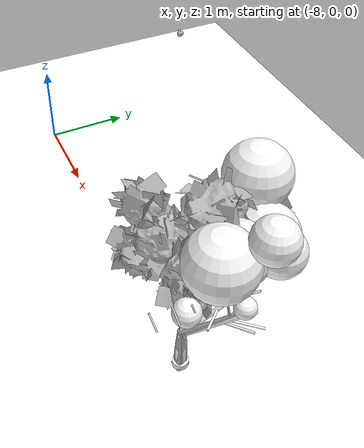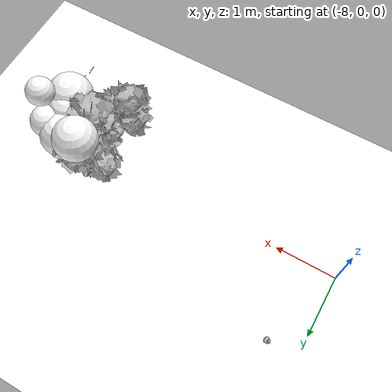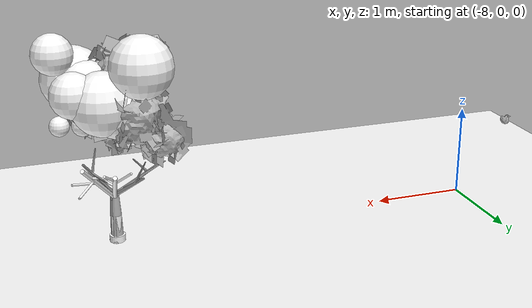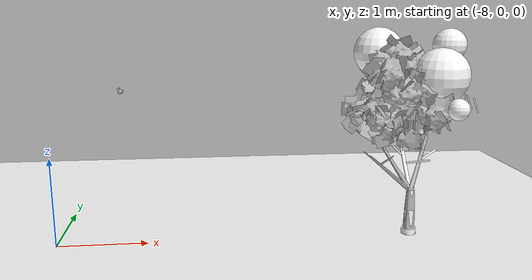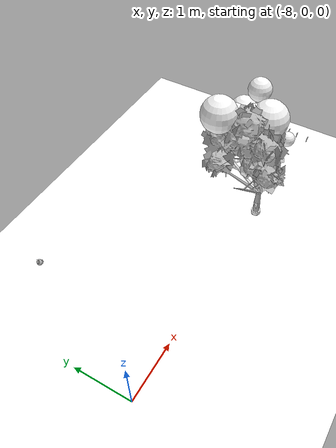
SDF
<sdf version="1.11">
 <world name="peach_orchard">
  <model name="ground">
   <static>true</static>
   <link name="link">
    <visual name="soil">
     <geometry><plane><normal>0 0 1</normal><size>32 22</size></plane></geometry>
     <material>
      <ambient>1 1 1 1</ambient>
      <diffuse>1 1 1 1</diffuse>
      <specular>0.1 0.1 0.1 1</specular>
      <pbr>
       <metal>
        <albedo_map>textures/soil_albedo.png</albedo_map>
        <normal_map type="tangent">textures/soil_normal.png</normal_map>
        <roughness>0.95</roughness>
        <metalness>0</metalness>
       </metal>
      </pbr>
     </material>
    </visual>
    <collision name="c_soil">
     <geometry><plane><normal>0 0 1</normal><size>32 22</size></plane></geometry>
    </collision>
   </link>
  </model>
  <model name="tree_r1_t3">
   <pose>-4 0 0 0 0 0</pose>
   <static>true</static>
   <link name="link">
    <visual name="tree_mesh">
     <pose>0 0 0 0 0 0.241848</pose>
     <geometry>
      <mesh><uri>model://peach_sim/meshes/peach_tree_b.glb</uri><scale>0.968086 0.968086 0.968086</scale></mesh>
     </geometry>
    </visual>
    <visual name="trunk_0">
     <pose>0 0 0.145946 0 0 0</pose>
     <geometry><cylinder><radius>0.0563853</radius><length>0.291893</length></cylinder></geometry>
     <material>
      <ambient>1 1 1 1</ambient>
      <diffuse>1 1 1 1</diffuse>
      <specular>0.1 0.1 0.1 1</specular>
      <pbr>
       <metal>
        <albedo_map>textures/bark_albedo.png</albedo_map>
        <normal_map type="tangent">textures/bark_normal.png</normal_map>
        <roughness>0.9</roughness>
        <metalness>0</metalness>
       </metal>
      </pbr>
     </material>
    </visual>
    <collision name="c_trunk_0">
     <pose>0 0 0.145946 0 0 0</pose>
     <geometry><cylinder><radius>0.0563853</radius><length>0.291893</length></cylinder></geometry>
    </collision>
    <visual name="trunk_1">
     <pose>0 0 0.411304 0 0 0</pose>
     <geometry><cylinder><radius>0.0405974</radius><length>0.238821</length></cylinder></geometry>
     <material>
      <ambient>1 1 1 1</ambient>
      <diffuse>1 1 1 1</diffuse>
      <specular>0.1 0.1 0.1 1</specular>
      <pbr>
       <metal>
        <albedo_map>textures/bark_albedo.png</albedo_map>
        <normal_map type="tangent">textures/bark_normal.png</normal_map>
        <roughness>0.9</roughness>
        <metalness>0</metalness>
       </metal>
      </pbr>
     </material>
    </visual>
    <collision name="c_trunk_1">
     <pose>0 0 0.411304 0 0 0</pose>
     <geometry><cylinder><radius>0.0405974</radius><length>0.238821</length></cylinder></geometry>
    </collision>
    <visual name="root_flare">
     <pose>0 0 0.035 0 0 0</pose>
     <geometry><cylinder><radius>0.0817587</radius><length>0.07</length></cylinder></geometry>
     <material>
      <ambient>1 1 1 1</ambient>
      <diffuse>1 1 1 1</diffuse>
      <specular>0.1 0.1 0.1 1</specular>
      <pbr>
       <metal>
        <albedo_map>textures/bark_albedo.png</albedo_map>
        <normal_map type="tangent">textures/bark_normal.png</normal_map>
        <roughness>0.95</roughness>
        <metalness>0</metalness>
       </metal>
      </pbr>
     </material>
    </visual>
    <visual name="scaffold_0">
     <pose>0.0329794 0.284302 0.709772 0 0.912133 1.45531</pose>
     <geometry><cylinder><radius>0.022</radius><length>0.723835</length></cylinder></geometry>
     <material>
      <ambient>1 1 1 1</ambient>
      <diffuse>1 1 1 1</diffuse>
      <specular>0.1 0.1 0.1 1</specular>
      <pbr>
       <metal>
        <albedo_map>textures/bark_albedo.png</albedo_map>
        <normal_map type="tangent">textures/bark_normal.png</normal_map>
        <roughness>0.9</roughness>
        <metalness>0</metalness>
       </metal>
      </pbr>
     </material>
    </visual>
    <collision name="c_scaffold_0">
     <pose>0.0329794 0.284302 0.709772 0 0.912133 1.45531</pose>
     <geometry><cylinder><radius>0.022</radius><length>0.723835</length></cylinder></geometry>
    </collision>
    <visual name="branchlet_0_0">
     <pose>0.118127 0.580056 0.933213 0 1.02898 1.01329</pose>
     <geometry><cylinder><radius>0.012</radius><length>0.275584</length></cylinder></geometry>
     <material>
      <ambient>1 1 1 1</ambient>
      <diffuse>1 1 1 1</diffuse>
      <specular>0.1 0.1 0.1 1</specular>
      <pbr>
       <metal>
        <albedo_map>textures/bark_albedo.png</albedo_map>
        <normal_map type="tangent">textures/bark_normal.png</normal_map>
        <roughness>0.9</roughness>
        <metalness>0</metalness>
       </metal>
      </pbr>
     </material>
    </visual>
    <visual name="branchlet_0_1">
     <pose>-0.0206288 0.499957 0.887823 0 0.964158 2.25963</pose>
     <geometry><cylinder><radius>0.012</radius><length>0.263931</length></cylinder></geometry>
     <material>
      <ambient>1 1 1 1</ambient>
      <diffuse>1 1 1 1</diffuse>
      <specular>0.1 0.1 0.1 1</specular>
      <pbr>
       <metal>
        <albedo_map>textures/bark_albedo.png</albedo_map>
        <normal_map type="tangent">textures/bark_normal.png</normal_map>
        <roughness>0.9</roughness>
        <metalness>0</metalness>
       </metal>
      </pbr>
     </material>
    </visual>
    <visual name="branchlet_0_2">
     <pose>0.146878 0.225408 0.795486 0 1.30136 -0.812169</pose>
     <geometry><cylinder><radius>0.012</radius><length>0.32443</length></cylinder></geometry>
     <material>
      <ambient>1 1 1 1</ambient>
      <diffuse>1 1 1 1</diffuse>
      <specular>0.1 0.1 0.1 1</specular>
      <pbr>
       <metal>
        <albedo_map>textures/bark_albedo.png</albedo_map>
        <normal_map type="tangent">textures/bark_normal.png</normal_map>
        <roughness>0.9</roughness>
        <metalness>0</metalness>
       </metal>
      </pbr>
     </material>
    </visual>
    <visual name="scaffold_1">
     <pose>0.181513 0.259035 0.754823 0 0.870519 0.959583</pose>
     <geometry><cylinder><radius>0.022</radius><length>0.827293</length></cylinder></geometry>
     <material>
      <ambient>1 1 1 1</ambient>
      <diffuse>1 1 1 1</diffuse>
      <specular>0.1 0.1 0.1 1</specular>
      <pbr>
       <metal>
        <albedo_map>textures/bark_albedo.png</albedo_map>
        <normal_map type="tangent">textures/bark_normal.png</normal_map>
        <roughness>0.9</roughness>
        <metalness>0</metalness>
       </metal>
      </pbr>
     </material>
    </visual>
    <collision name="c_scaffold_1">
     <pose>0.181513 0.259035 0.754823 0 0.870519 0.959583</pose>
     <geometry><cylinder><radius>0.022</radius><length>0.827293</length></cylinder></geometry>
    </collision>
    <visual name="branchlet_1_0">
     <pose>0.326645 0.471388 0.809922 0 1.72518 0.978137</pose>
     <geometry><cylinder><radius>0.012</radius><length>0.327774</length></cylinder></geometry>
     <material>
      <ambient>1 1 1 1</ambient>
      <diffuse>1 1 1 1</diffuse>
      <specular>0.1 0.1 0.1 1</specular>
      <pbr>
       <metal>
        <albedo_map>textures/bark_albedo.png</albedo_map>
        <normal_map type="tangent">textures/bark_normal.png</normal_map>
        <roughness>0.9</roughness>
        <metalness>0</metalness>
       </metal>
      </pbr>
     </material>
    </visual>
    <visual name="branchlet_1_1">
     <pose>0.334704 0.375547 0.830381 0 1.31322 0.567138</pose>
     <geometry><cylinder><radius>0.012</radius><length>0.316873</length></cylinder></geometry>
     <material>
      <ambient>1 1 1 1</ambient>
      <diffuse>1 1 1 1</diffuse>
      <specular>0.1 0.1 0.1 1</specular>
      <pbr>
       <metal>
        <albedo_map>textures/bark_albedo.png</albedo_map>
        <normal_map type="tangent">textures/bark_normal.png</normal_map>
        <roughness>0.9</roughness>
        <metalness>0</metalness>
       </metal>
      </pbr>
     </material>
    </visual>
    <visual name="branchlet_1_2">
     <pose>0.16469 0.467942 0.900355 0 1.49248 2.52145</pose>
     <geometry><cylinder><radius>0.012</radius><length>0.268154</length></cylinder></geometry>
     <material>
      <ambient>1 1 1 1</ambient>
      <diffuse>1 1 1 1</diffuse>
      <specular>0.1 0.1 0.1 1</specular>
      <pbr>
       <metal>
        <albedo_map>textures/bark_albedo.png</albedo_map>
        <normal_map type="tangent">textures/bark_normal.png</normal_map>
        <roughness>0.9</roughness>
        <metalness>0</metalness>
       </metal>
      </pbr>
     </material>
    </visual>
    <visual name="canopy_0">
     <pose>0.064805 0.394088 1.7033 0 0 0</pose>
     <geometry><sphere><radius>0.262453</radius></sphere></geometry>
     <material>
      <ambient>1 1 1 1</ambient>
      <diffuse>1 1 1 1</diffuse>
      <specular>0.1 0.1 0.1 1</specular>
      <pbr>
       <metal>
        <albedo_map>textures/leaf_albedo.png</albedo_map>
        <normal_map type="tangent">textures/leaf_normal.png</normal_map>
        <roughness>0.85</roughness>
        <metalness>0</metalness>
       </metal>
      </pbr>
     </material>
    </visual>
    <collision name="c_canopy_0">
     <pose>0.064805 0.394088 1.7033 0 0 0</pose>
     <geometry><sphere><radius>0.262453</radius></sphere></geometry>
    </collision>
    <visual name="canopy_1">
     <pose>0.536835 0.416014 2.14856 0 0 0</pose>
     <geometry><sphere><radius>0.195367</radius></sphere></geometry>
     <material>
      <ambient>1 1 1 1</ambient>
      <diffuse>1 1 1 1</diffuse>
      <specular>0.1 0.1 0.1 1</specular>
      <pbr>
       <metal>
        <albedo_map>textures/leaf_albedo.png</albedo_map>
        <normal_map type="tangent">textures/leaf_normal.png</normal_map>
        <roughness>0.85</roughness>
        <metalness>0</metalness>
       </metal>
      </pbr>
     </material>
    </visual>
    <collision name="c_canopy_1">
     <pose>0.536835 0.416014 2.14856 0 0 0</pose>
     <geometry><sphere><radius>0.195367</radius></sphere></geometry>
    </collision>
    <visual name="canopy_2">
     <pose>-0.00118592 0.62112 1.63104 0 0 0</pose>
     <geometry><sphere><radius>0.28126</radius></sphere></geometry>
     <material>
      <ambient>1 1 1 1</ambient>
      <diffuse>1 1 1 1</diffuse>
      <specular>0.1 0.1 0.1 1</specular>
      <pbr>
       <metal>
        <albedo_map>textures/leaf_albedo.png</albedo_map>
        <normal_map type="tangent">textures/leaf_normal.png</normal_map>
        <roughness>0.85</roughness>
        <metalness>0</metalness>
       </metal>
      </pbr>
     </material>
    </visual>
    <collision name="c_canopy_2">
     <pose>-0.00118592 0.62112 1.63104 0 0 0</pose>
     <geometry><sphere><radius>0.28126</radius></sphere></geometry>
    </collision>
    <visual name="canopy_3">
     <pose>0.143746 0.633204 1.70177 0 0 0</pose>
     <geometry><sphere><radius>0.306259</radius></sphere></geometry>
     <material>
      <ambient>1 1 1 1</ambient>
      <diffuse>1 1 1 1</diffuse>
      <specular>0.1 0.1 0.1 1</specular>
      <pbr>
       <metal>
        <albedo_map>textures/leaf_albedo.png</albedo_map>
        <normal_map type="tangent">textures/leaf_normal.png</normal_map>
        <roughness>0.85</roughness>
        <metalness>0</metalness>
       </metal>
      </pbr>
     </material>
    </visual>
    <visual name="canopy_4">
     <pose>-0.181231 0.64685 1.96443 0 0 0</pose>
     <geometry><sphere><radius>0.2058</radius></sphere></geometry>
     <material>
      <ambient>1 1 1 1</ambient>
      <diffuse>1 1 1 1</diffuse>
      <specular>0.1 0.1 0.1 1</specular>
      <pbr>
       <metal>
        <albedo_map>textures/leaf_albedo.png</albedo_map>
        <normal_map type="tangent">textures/leaf_normal.png</normal_map>
        <roughness>0.85</roughness>
        <metalness>0</metalness>
       </metal>
      </pbr>
     </material>
    </visual>
    <visual name="canopy_5">
     <pose>0.39819 0.603902 1.79832 0 0 0</pose>
     <geometry><sphere><radius>0.219762</radius></sphere></geometry>
     <material>
      <ambient>1 1 1 1</ambient>
      <diffuse>1 1 1 1</diffuse>
      <specular>0.1 0.1 0.1 1</specular>
      <pbr>
       <metal>
        <albedo_map>textures/leaf_albedo.png</albedo_map>
        <normal_map type="tangent">textures/leaf_normal.png</normal_map>
        <roughness>0.85</roughness>
        <metalness>0</metalness>
       </metal>
      </pbr>
     </material>
    </visual>
    <visual name="canopy_6">
     <pose>-0.214008 0.743225 2.04777 0 0 0</pose>
     <geometry><sphere><radius>0.302364</radius></sphere></geometry>
     <material>
      <ambient>1 1 1 1</ambient>
      <diffuse>1 1 1 1</diffuse>
      <specular>0.1 0.1 0.1 1</specular>
      <pbr>
       <metal>
        <albedo_map>textures/leaf_albedo.png</albedo_map>
        <normal_map type="tangent">textures/leaf_normal.png</normal_map>
        <roughness>0.85</roughness>
        <metalness>0</metalness>
       </metal>
      </pbr>
     </material>
    </visual>
    <visual name="canopy_7">
     <pose>0.252425 0.311223 1.76024 0 0 0</pose>
     <geometry><sphere><radius>0.285173</radius></sphere></geometry>
     <material>
      <ambient>1 1 1 1</ambient>
      <diffuse>1 1 1 1</diffuse>
      <specular>0.1 0.1 0.1 1</specular>
      <pbr>
       <metal>
        <albedo_map>textures/leaf_albedo.png</albedo_map>
        <normal_map type="tangent">textures/leaf_normal.png</normal_map>
        <roughness>0.85</roughness>
        <metalness>0</metalness>
       </metal>
      </pbr>
     </material>
    </visual>
    <visual name="canopy_8">
     <pose>0.333621 0.11952 1.82283 0 0 0</pose>
     <geometry><sphere><radius>0.31984</radius></sphere></geometry>
     <material>
      <ambient>1 1 1 1</ambient>
      <diffuse>1 1 1 1</diffuse>
      <specular>0.1 0.1 0.1 1</specular>
      <pbr>
       <metal>
        <albedo_map>textures/leaf_albedo.png</albedo_map>
        <normal_map type="tangent">textures/leaf_normal.png</normal_map>
        <roughness>0.85</roughness>
        <metalness>0</metalness>
       </metal>
      </pbr>
     </material>
    </visual>
    <visual name="foliage_0">
     <pose>0.417111 -0.199624 1.49172 0 0 0</pose>
     <geometry><sphere><radius>0.12201</radius></sphere></geometry>
     <material>
      <ambient>1 1 1 1</ambient>
      <diffuse>1 1 1 1</diffuse>
      <specular>0.1 0.1 0.1 1</specular>
      <pbr>
       <metal>
        <albedo_map>textures/leaf_albedo.png</albedo_map>
        <normal_map type="tangent">textures/leaf_normal.png</normal_map>
        <roughness>0.85</roughness>
        <metalness>0</metalness>
       </metal>
      </pbr>
     </material>
    </visual>
    <visual name="foliage_4">
     <pose>0.301586 0.335927 1.41804 0 0 0</pose>
     <geometry><sphere><radius>0.108404</radius></sphere></geometry>
     <material>
      <ambient>1 1 1 1</ambient>
      <diffuse>1 1 1 1</diffuse>
      <specular>0.1 0.1 0.1 1</specular>
      <pbr>
       <metal>
        <albedo_map>textures/leaf_albedo.png</albedo_map>
        <normal_map type="tangent">textures/leaf_normal.png</normal_map>
        <roughness>0.85</roughness>
        <metalness>0</metalness>
       </metal>
      </pbr>
     </material>
    </visual>
    <visual name="foliage_8">
     <pose>0.514489 0.270833 1.40672 0 0 0</pose>
     <geometry><sphere><radius>0.0981645</radius></sphere></geometry>
     <material>
      <ambient>1 1 1 1</ambient>
      <diffuse>1 1 1 1</diffuse>
      <specular>0.1 0.1 0.1 1</specular>
      <pbr>
       <metal>
        <albedo_map>textures/leaf_albedo.png</albedo_map>
        <normal_map type="tangent">textures/leaf_normal.png</normal_map>
        <roughness>0.85</roughness>
        <metalness>0</metalness>
       </metal>
      </pbr>
     </material>
    </visual>
    <visual name="twig_0">
     <pose>0.493512 -0.171561 1.56841 0 0.323093 -2.21088</pose>
     <geometry><cylinder><radius>0.007</radius><length>0.195568</length></cylinder></geometry>
     <material>
      <ambient>1 1 1 1</ambient>
      <diffuse>1 1 1 1</diffuse>
      <specular>0.1 0.1 0.1 1</specular>
      <pbr>
       <metal>
        <albedo_map>textures/bark_albedo.png</albedo_map>
        <normal_map type="tangent">textures/bark_normal.png</normal_map>
        <roughness>0.9</roughness>
        <metalness>0</metalness>
       </metal>
      </pbr>
     </material>
    </visual>
    <visual name="twig_1">
     <pose>0.470332 -0.322523 1.58863 0 0.473804 -2.74767</pose>
     <geometry><cylinder><radius>0.007</radius><length>0.182788</length></cylinder></geometry>
     <material>
      <ambient>1 1 1 1</ambient>
      <diffuse>1 1 1 1</diffuse>
      <specular>0.1 0.1 0.1 1</specular>
      <pbr>
       <metal>
        <albedo_map>textures/bark_albedo.png</albedo_map>
        <normal_map type="tangent">textures/bark_normal.png</normal_map>
        <roughness>0.9</roughness>
        <metalness>0</metalness>
       </metal>
      </pbr>
     </material>
    </visual>
    <visual name="twig_2">
     <pose>0.453296 -0.502014 1.58796 0 0.483501 -2.73242</pose>
     <geometry><cylinder><radius>0.007</radius><length>0.179243</length></cylinder></geometry>
     <material>
      <ambient>1 1 1 1</ambient>
      <diffuse>1 1 1 1</diffuse>
      <specular>0.1 0.1 0.1 1</specular>
      <pbr>
       <metal>
        <albedo_map>textures/bark_albedo.png</albedo_map>
        <normal_map type="tangent">textures/bark_normal.png</normal_map>
        <roughness>0.9</roughness>
        <metalness>0</metalness>
       </metal>
      </pbr>
     </material>
    </visual>
    <visual name="twig_3">
     <pose>0.290309 0.101487 1.50677 0 0.363349 2.80969</pose>
     <geometry><cylinder><radius>0.007</radius><length>0.108767</length></cylinder></geometry>
     <material>
      <ambient>1 1 1 1</ambient>
      <diffuse>1 1 1 1</diffuse>
      <specular>0.1 0.1 0.1 1</specular>
      <pbr>
       <metal>
        <albedo_map>textures/bark_albedo.png</albedo_map>
        <normal_map type="tangent">textures/bark_normal.png</normal_map>
        <roughness>0.9</roughness>
        <metalness>0</metalness>
       </metal>
      </pbr>
     </material>
    </visual>
    <visual name="twig_4">
     <pose>0.307786 0.310989 1.5504 0 0.727273 2.77805</pose>
     <geometry><cylinder><radius>0.007</radius><length>0.103851</length></cylinder></geometry>
     <material>
      <ambient>1 1 1 1</ambient>
      <diffuse>1 1 1 1</diffuse>
      <specular>0.1 0.1 0.1 1</specular>
      <pbr>
       <metal>
        <albedo_map>textures/bark_albedo.png</albedo_map>
        <normal_map type="tangent">textures/bark_normal.png</normal_map>
        <roughness>0.9</roughness>
        <metalness>0</metalness>
       </metal>
      </pbr>
     </material>
    </visual>
    <visual name="twig_5">
     <pose>0.339444 0.544658 1.61342 0 0.392445 2.84728</pose>
     <geometry><cylinder><radius>0.007</radius><length>0.219606</length></cylinder></geometry>
     <material>
      <ambient>1 1 1 1</ambient>
      <diffuse>1 1 1 1</diffuse>
      <specular>0.1 0.1 0.1 1</specular>
      <pbr>
       <metal>
        <albedo_map>textures/bark_albedo.png</albedo_map>
        <normal_map type="tangent">textures/bark_normal.png</normal_map>
        <roughness>0.9</roughness>
        <metalness>0</metalness>
       </metal>
      </pbr>
     </material>
    </visual>
    <visual name="twig_6">
     <pose>0.38345 -0.00289012 1.5703 0 0.359835 -2.727</pose>
     <geometry><cylinder><radius>0.007</radius><length>0.213034</length></cylinder></geometry>
     <material>
      <ambient>1 1 1 1</ambient>
      <diffuse>1 1 1 1</diffuse>
      <specular>0.1 0.1 0.1 1</specular>
      <pbr>
       <metal>
        <albedo_map>textures/bark_albedo.png</albedo_map>
        <normal_map type="tangent">textures/bark_normal.png</normal_map>
        <roughness>0.9</roughness>
        <metalness>0</metalness>
       </metal>
      </pbr>
     </material>
    </visual>
    <visual name="twig_7">
     <pose>0.412016 0.0861907 1.5304 0 0.461709 -2.33478</pose>
     <geometry><cylinder><radius>0.007</radius><length>0.192888</length></cylinder></geometry>
     <material>
      <ambient>1 1 1 1</ambient>
      <diffuse>1 1 1 1</diffuse>
      <specular>0.1 0.1 0.1 1</specular>
      <pbr>
       <metal>
        <albedo_map>textures/bark_albedo.png</albedo_map>
        <normal_map type="tangent">textures/bark_normal.png</normal_map>
        <roughness>0.9</roughness>
        <metalness>0</metalness>
       </metal>
      </pbr>
     </material>
    </visual>
    <visual name="twig_8">
     <pose>0.509468 0.229766 1.47456 0 0.55587 -3.12906</pose>
     <geometry><cylinder><radius>0.007</radius><length>0.119455</length></cylinder></geometry>
     <material>
      <ambient>1 1 1 1</ambient>
      <diffuse>1 1 1 1</diffuse>
      <specular>0.1 0.1 0.1 1</specular>
      <pbr>
       <metal>
        <albedo_map>textures/bark_albedo.png</albedo_map>
        <normal_map type="tangent">textures/bark_normal.png</normal_map>
        <roughness>0.9</roughness>
        <metalness>0</metalness>
       </metal>
      </pbr>
     </material>
    </visual>
   </link>
  </model>
  <model name="peach_tree_r0_t4_01">
   <pose>-7.45 1.66604 1.45 0 0.676479 3.10772</pose>
   <static>true</static>
   <link name="bag">
    <visual name="bag_mesh">
     <pose>0 0 0.0386345 0 0 0</pose>
     <geometry>
      <mesh><uri>model://peach_sim/meshes/bagged_peach.glb</uri><scale>0.99516 1.18866 0.878056</scale></mesh>
     </geometry>
    </visual>
    <visual name="body">
     <pose>0 0 0.0206345 0 0 0</pose>
     <geometry><ellipsoid><radii>0.0373185 0.0309051 0.0222852</radii></ellipsoid></geometry>
     <material>
      <ambient>1 1 1 1</ambient>
      <diffuse>1 1 1 1</diffuse>
      <specular>0.1 0.1 0.1 1</specular>
      <pbr>
       <metal>
        <albedo_map>textures/paper_bag_albedo.png</albedo_map>
        <normal_map type="tangent">textures/paper_bag_normal.png</normal_map>
        <roughness>0.72</roughness>
        <metalness>0</metalness>
       </metal>
      </pbr>
     </material>
    </visual>
    <visual name="bottom_fold">
     <pose>0 0 0.012 0 0 0.35</pose>
     <geometry><box><size>0.0578437 0.0355408 0.022</size></box></geometry>
     <material>
      <ambient>1 1 1 1</ambient>
      <diffuse>1 1 1 1</diffuse>
      <specular>0.1 0.1 0.1 1</specular>
      <pbr>
       <metal>
        <albedo_map>textures/paper_bag_albedo.png</albedo_map>
        <normal_map type="tangent">textures/paper_bag_normal.png</normal_map>
        <roughness>0.8</roughness>
        <metalness>0</metalness>
       </metal>
      </pbr>
     </material>
    </visual>
    <visual name="fruit">
     <pose>0 0 0.0188406 0 0 0</pose>
     <geometry><sphere><radius>0.0258343</radius></sphere></geometry>
     <material>
      <ambient>1 1 1 1</ambient>
      <diffuse>1 1 1 1</diffuse>
      <specular>0.1 0.1 0.1 1</specular>
      <pbr>
       <metal>
        <albedo_map>textures/fruit_skin_albedo.png</albedo_map>
        <normal_map type="tangent">textures/fruit_skin_normal.png</normal_map>
        <roughness>0.55</roughness>
        <metalness>0</metalness>
       </metal>
      </pbr>
     </material>
    </visual>
    <visual name="neck">
     <pose>0 0 0.0502689 0 0 0</pose>
     <geometry><cylinder><radius>0.013</radius><length>0.018</length></cylinder></geometry>
     <material>
      <ambient>1 1 1 1</ambient>
      <diffuse>1 1 1 1</diffuse>
      <specular>0.1 0.1 0.1 1</specular>
      <pbr>
       <metal>
        <albedo_map>textures/paper_bag_albedo.png</albedo_map>
        <normal_map type="tangent">textures/paper_bag_normal.png</normal_map>
        <roughness>0.75</roughness>
        <metalness>0</metalness>
       </metal>
      </pbr>
     </material>
    </visual>
    <visual name="gather">
     <pose>0 0 0.0312689 0 0 0</pose>
     <geometry><cylinder><radius>0.019</radius><length>0.02</length></cylinder></geometry>
     <material>
      <ambient>1 1 1 1</ambient>
      <diffuse>1 1 1 1</diffuse>
      <specular>0.1 0.1 0.1 1</specular>
      <pbr>
       <metal>
        <albedo_map>textures/paper_bag_albedo.png</albedo_map>
        <normal_map type="tangent">textures/paper_bag_normal.png</normal_map>
        <roughness>0.8</roughness>
        <metalness>0</metalness>
       </metal>
      </pbr>
     </material>
    </visual>
    <visual name="inner_paper">
     <pose>0 0 0.0552689 0 0 0</pose>
     <geometry><cylinder><radius>0.01</radius><length>0.008</length></cylinder></geometry>
     <material>
      <ambient>0.180392 0.14902 0.133333 1</ambient>
      <diffuse>0.180392 0.14902 0.133333 1</diffuse>
      <specular>0.1 0.1 0.1 1</specular>
     </material>
    </visual>
    <visual name="wire_0">
     <pose>0 0 0.0452689 0 0 0</pose>
     <geometry><cylinder><radius>0.0205</radius><length>0.0035</length></cylinder></geometry>
     <material>
      <ambient>0.25 0.25 0.25 1</ambient>
      <diffuse>0.25 0.25 0.25 1</diffuse>
      <specular>0.1 0.1 0.1 1</specular>
     </material>
    </visual>
    <visual name="wire_1">
     <pose>0 0 0.0522689 0 0 0</pose>
     <geometry><cylinder><radius>0.0205</radius><length>0.0035</length></cylinder></geometry>
     <material>
      <ambient>0.25 0.25 0.25 1</ambient>
      <diffuse>0.25 0.25 0.25 1</diffuse>
      <specular>0.1 0.1 0.1 1</specular>
     </material>
    </visual>
    <visual name="wire_tail">
     <pose>0.01 0 0.0532689 0 0.521618 0</pose>
     <geometry><cylinder><radius>0.0012</radius><length>0.026</length></cylinder></geometry>
     <material>
      <ambient>0.25 0.25 0.25 1</ambient>
      <diffuse>0.25 0.25 0.25 1</diffuse>
      <specular>0.1 0.1 0.1 1</specular>
     </material>
    </visual>
    <collision name="c_body">
     <pose>0 0 0.0206345 0 0 0</pose>
     <geometry><cylinder><radius>0.0373185</radius><length>0.0412689</length></cylinder></geometry>
    </collision>
   </link>
  </model>
 </world>
</sdf>
